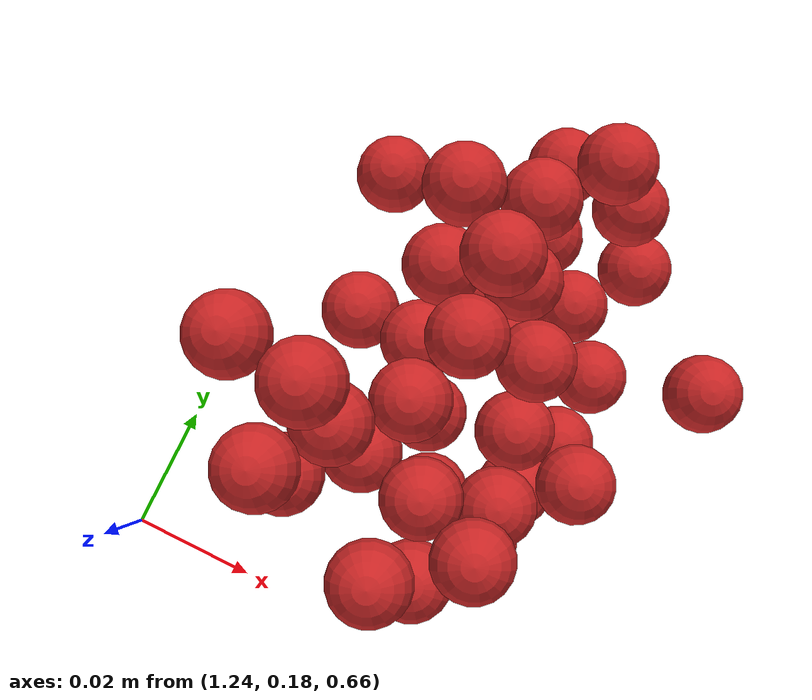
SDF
<sdf version="1.4">
 <world name="default">
  <model name="ground_plane">
   <static>1</static>
   <link name="link">
    <collision name="collision">
     <geometry><plane><normal>0 0 1</normal><size>100 100</size></plane></geometry>
     <surface><friction><ode><mu>100</mu><mu2>50</mu2></ode></friction></surface>
    </collision>
    <visual name="visual">
     <cast_shadows>0</cast_shadows>
     <geometry><plane><normal>0 0 1</normal><size>100 100</size></plane></geometry>
     <material>
      <script><uri>file://media/materials/scripts/gazebo.material</uri><name>Gazebo/Grey</name></script>
     </material>
    </visual>
    <velocity_decay><linear>0</linear><angular>0</angular></velocity_decay>
   </link>
  </model>
  <model name="sphere0">
   <pose>-0.008449 -0.022596 -0.039328 0.014462 -0.011872 0.001814</pose>
   <link name="link">
    <pose>1.27614 0.232149 0.722288 0 -0 0</pose>
    <inertial>
     <mass>0.001</mass>
     <inertia><ixx>0.004</ixx><ixy>0</ixy><ixz>0</ixz><iyy>0.004</iyy><iyz>0</iyz><izz>0.004</izz></inertia>
    </inertial>
    <collision name="collision">
     <surface>
      <contact><ode><kp>1e+10</kp><kd>1</kd></ode></contact>
      <friction><ode><mu>0.01</mu><mu2>0.01</mu2></ode></friction>
     </surface>
     <geometry><sphere><radius>0.006</radius></sphere></geometry>
    </collision>
    <visual name="visual">
     <geometry><sphere><radius>0.006</radius></sphere></geometry>
     <material>
      <script><uri>file://media/materials/scripts/gazebo.material</uri><name>Gazebo/Red</name></script>
     </material>
    </visual>
    <velocity_decay><linear>0</linear><angular>0</angular></velocity_decay>
   </link>
   <static>0</static>
  </model>
  <model name="sphere4">
   <pose>-0.014802 -0.025122 -0.033295 -0.000353 -0.001627 -0.000772</pose>
   <link name="link">
    <pose>1.28814 0.244149 0.722288 0 -0 0</pose>
    <inertial>
     <mass>0.001</mass>
     <inertia><ixx>0.004</ixx><ixy>0</ixy><ixz>0</ixz><iyy>0.004</iyy><iyz>0</iyz><izz>0.004</izz></inertia>
    </inertial>
    <collision name="collision">
     <surface>
      <contact><ode><kp>1e+10</kp><kd>1</kd></ode></contact>
      <friction><ode><mu>0.01</mu><mu2>0.01</mu2></ode></friction>
     </surface>
     <geometry><sphere><radius>0.006</radius></sphere></geometry>
    </collision>
    <visual name="visual">
     <geometry><sphere><radius>0.006</radius></sphere></geometry>
     <material>
      <script><uri>file://media/materials/scripts/gazebo.material</uri><name>Gazebo/Red</name></script>
     </material>
    </visual>
    <velocity_decay><linear>0</linear><angular>0</angular></velocity_decay>
   </link>
   <static>0</static>
  </model>
  <model name="sphere9">
   <pose>-0.015296 -0.01818 -0.030059 0.000717 -0.001454 0.000546</pose>
   <link name="link">
    <pose>1.27614 0.232149 0.734288 0 -0 0</pose>
    <inertial>
     <mass>0.001</mass>
     <inertia><ixx>0.004</ixx><ixy>0</ixy><ixz>0</ixz><iyy>0.004</iyy><iyz>0</iyz><izz>0.004</izz></inertia>
    </inertial>
    <collision name="collision">
     <surface>
      <contact><ode><kp>1e+10</kp><kd>1</kd></ode></contact>
      <friction><ode><mu>0.01</mu><mu2>0.01</mu2></ode></friction>
     </surface>
     <geometry><sphere><radius>0.006</radius></sphere></geometry>
    </collision>
    <visual name="visual">
     <geometry><sphere><radius>0.006</radius></sphere></geometry>
     <material>
      <script><uri>file://media/materials/scripts/gazebo.material</uri><name>Gazebo/Red</name></script>
     </material>
    </visual>
    <velocity_decay><linear>0</linear><angular>0</angular></velocity_decay>
   </link>
   <static>0</static>
  </model>
  <model name="sphere12">
   <pose>-0.013517 -0.018649 -0.062397 -0.002256 -0.005057 0.000115</pose>
   <link name="link">
    <pose>1.27614 0.244149 0.734288 0 -0 0</pose>
    <inertial>
     <mass>0.001</mass>
     <inertia><ixx>0.004</ixx><ixy>0</ixy><ixz>0</ixz><iyy>0.004</iyy><iyz>0</iyz><izz>0.004</izz></inertia>
    </inertial>
    <collision name="collision">
     <surface>
      <contact><ode><kp>1e+10</kp><kd>1</kd></ode></contact>
      <friction><ode><mu>0.01</mu><mu2>0.01</mu2></ode></friction>
     </surface>
     <geometry><sphere><radius>0.006</radius></sphere></geometry>
    </collision>
    <visual name="visual">
     <geometry><sphere><radius>0.006</radius></sphere></geometry>
     <material>
      <script><uri>file://media/materials/scripts/gazebo.material</uri><name>Gazebo/Red</name></script>
     </material>
    </visual>
    <velocity_decay><linear>0</linear><angular>0</angular></velocity_decay>
   </link>
   <static>0</static>
  </model>
  <model name="sphere13">
   <pose>-0.0034 -0.008162 -0.074705 0.000972 -0.005916 1.1e-05</pose>
   <link name="link">
    <pose>1.28814 0.244149 0.734288 0 -0 0</pose>
    <inertial>
     <mass>0.001</mass>
     <inertia><ixx>0.004</ixx><ixy>0</ixy><ixz>0</ixz><iyy>0.004</iyy><iyz>0</iyz><izz>0.004</izz></inertia>
    </inertial>
    <collision name="collision">
     <surface>
      <contact><ode><kp>1e+10</kp><kd>1</kd></ode></contact>
      <friction><ode><mu>0.01</mu><mu2>0.01</mu2></ode></friction>
     </surface>
     <geometry><sphere><radius>0.006</radius></sphere></geometry>
    </collision>
    <visual name="visual">
     <geometry><sphere><radius>0.006</radius></sphere></geometry>
     <material>
      <script><uri>file://media/materials/scripts/gazebo.material</uri><name>Gazebo/Red</name></script>
     </material>
    </visual>
    <velocity_decay><linear>0</linear><angular>0</angular></velocity_decay>
   </link>
   <static>0</static>
  </model>
  <model name="sphere15">
   <pose>-0.003786 -0.027529 -0.077509 0.020082 -0.032112 0.001138</pose>
   <link name="link">
    <pose>1.27614 0.256149 0.734288 0 -0 0</pose>
    <inertial>
     <mass>0.001</mass>
     <inertia><ixx>0.004</ixx><ixy>0</ixy><ixz>0</ixz><iyy>0.004</iyy><iyz>0</iyz><izz>0.004</izz></inertia>
    </inertial>
    <collision name="collision">
     <surface>
      <contact><ode><kp>1e+10</kp><kd>1</kd></ode></contact>
      <friction><ode><mu>0.01</mu><mu2>0.01</mu2></ode></friction>
     </surface>
     <geometry><sphere><radius>0.006</radius></sphere></geometry>
    </collision>
    <visual name="visual">
     <geometry><sphere><radius>0.006</radius></sphere></geometry>
     <material>
      <script><uri>file://media/materials/scripts/gazebo.material</uri><name>Gazebo/Red</name></script>
     </material>
    </visual>
    <velocity_decay><linear>0</linear><angular>0</angular></velocity_decay>
   </link>
   <static>0</static>
  </model>
  <model name="sphere19">
   <pose>-0.009811 -0.037376 -0.047543 -0.001053 -0.000103 -0.000936</pose>
   <link name="link">
    <pose>1.28814 0.232149 0.746288 0 -0 0</pose>
    <inertial>
     <mass>0.001</mass>
     <inertia><ixx>0.004</ixx><ixy>0</ixy><ixz>0</ixz><iyy>0.004</iyy><iyz>0</iyz><izz>0.004</izz></inertia>
    </inertial>
    <collision name="collision">
     <surface>
      <contact><ode><kp>1e+10</kp><kd>1</kd></ode></contact>
      <friction><ode><mu>0.01</mu><mu2>0.01</mu2></ode></friction>
     </surface>
     <geometry><sphere><radius>0.006</radius></sphere></geometry>
    </collision>
    <visual name="visual">
     <geometry><sphere><radius>0.006</radius></sphere></geometry>
     <material>
      <script><uri>file://media/materials/scripts/gazebo.material</uri><name>Gazebo/Red</name></script>
     </material>
    </visual>
    <velocity_decay><linear>0</linear><angular>0</angular></velocity_decay>
   </link>
   <static>0</static>
  </model>
  <model name="sphere27">
   <pose>-0.015477 -0.031403 -0.068217 0.000595 0.000457 0.000546</pose>
   <link name="link">
    <pose>1.27614 0.232149 0.758288 0 -0 0</pose>
    <inertial>
     <mass>0.001</mass>
     <inertia><ixx>0.004</ixx><ixy>0</ixy><ixz>0</ixz><iyy>0.004</iyy><iyz>0</iyz><izz>0.004</izz></inertia>
    </inertial>
    <collision name="collision">
     <surface>
      <contact><ode><kp>1e+10</kp><kd>1</kd></ode></contact>
      <friction><ode><mu>0.01</mu><mu2>0.01</mu2></ode></friction>
     </surface>
     <geometry><sphere><radius>0.006</radius></sphere></geometry>
    </collision>
    <visual name="visual">
     <geometry><sphere><radius>0.006</radius></sphere></geometry>
     <material>
      <script><uri>file://media/materials/scripts/gazebo.material</uri><name>Gazebo/Red</name></script>
     </material>
    </visual>
    <velocity_decay><linear>0</linear><angular>0</angular></velocity_decay>
   </link>
   <static>0</static>
  </model>
  <model name="sphere28">
   <pose>-0.003416 -0.037625 -0.071615 -0.000766 -0.001145 0.00032</pose>
   <link name="link">
    <pose>1.28814 0.232149 0.758288 0 -0 0</pose>
    <inertial>
     <mass>0.001</mass>
     <inertia><ixx>0.004</ixx><ixy>0</ixy><ixz>0</ixz><iyy>0.004</iyy><iyz>0</iyz><izz>0.004</izz></inertia>
    </inertial>
    <collision name="collision">
     <surface>
      <contact><ode><kp>1e+10</kp><kd>1</kd></ode></contact>
      <friction><ode><mu>0.01</mu><mu2>0.01</mu2></ode></friction>
     </surface>
     <geometry><sphere><radius>0.006</radius></sphere></geometry>
    </collision>
    <visual name="visual">
     <geometry><sphere><radius>0.006</radius></sphere></geometry>
     <material>
      <script><uri>file://media/materials/scripts/gazebo.material</uri><name>Gazebo/Red</name></script>
     </material>
    </visual>
    <velocity_decay><linear>0</linear><angular>0</angular></velocity_decay>
   </link>
   <static>0</static>
  </model>
  <model name="sphere30">
   <pose>-0.009021 -0.004718 -0.069597 0.000796 0.000534 -0.000799</pose>
   <link name="link">
    <pose>1.27614 0.244149 0.758288 0 -0 0</pose>
    <inertial>
     <mass>0.001</mass>
     <inertia><ixx>0.004</ixx><ixy>0</ixy><ixz>0</ixz><iyy>0.004</iyy><iyz>0</iyz><izz>0.004</izz></inertia>
    </inertial>
    <collision name="collision">
     <surface>
      <contact><ode><kp>1e+10</kp><kd>1</kd></ode></contact>
      <friction><ode><mu>0.01</mu><mu2>0.01</mu2></ode></friction>
     </surface>
     <geometry><sphere><radius>0.006</radius></sphere></geometry>
    </collision>
    <visual name="visual">
     <geometry><sphere><radius>0.006</radius></sphere></geometry>
     <material>
      <script><uri>file://media/materials/scripts/gazebo.material</uri><name>Gazebo/Red</name></script>
     </material>
    </visual>
    <velocity_decay><linear>0</linear><angular>0</angular></velocity_decay>
   </link>
   <static>0</static>
  </model>
  <model name="sphere41">
   <pose>-0.008737 -0.033744 -0.087392 -0.000104 -0.001694 -0.000369</pose>
   <link name="link">
    <pose>1.30014 0.244149 0.770288 0 -0 0</pose>
    <inertial>
     <mass>0.001</mass>
     <inertia><ixx>0.004</ixx><ixy>0</ixy><ixz>0</ixz><iyy>0.004</iyy><iyz>0</iyz><izz>0.004</izz></inertia>
    </inertial>
    <collision name="collision">
     <surface>
      <contact><ode><kp>1e+10</kp><kd>1</kd></ode></contact>
      <friction><ode><mu>0.01</mu><mu2>0.01</mu2></ode></friction>
     </surface>
     <geometry><sphere><radius>0.006</radius></sphere></geometry>
    </collision>
    <visual name="visual">
     <geometry><sphere><radius>0.006</radius></sphere></geometry>
     <material>
      <script><uri>file://media/materials/scripts/gazebo.material</uri><name>Gazebo/Red</name></script>
     </material>
    </visual>
    <velocity_decay><linear>0</linear><angular>0</angular></velocity_decay>
   </link>
   <static>0</static>
  </model>
  <model name="sphere42">
   <pose>-0.013365 -0.011616 -0.107501 0.000366 -0.010215 0.003573</pose>
   <link name="link">
    <pose>1.27614 0.256149 0.770288 0 -0 0</pose>
    <inertial>
     <mass>0.001</mass>
     <inertia><ixx>0.004</ixx><ixy>0</ixy><ixz>0</ixz><iyy>0.004</iyy><iyz>0</iyz><izz>0.004</izz></inertia>
    </inertial>
    <collision name="collision">
     <surface>
      <contact><ode><kp>1e+10</kp><kd>1</kd></ode></contact>
      <friction><ode><mu>0.01</mu><mu2>0.01</mu2></ode></friction>
     </surface>
     <geometry><sphere><radius>0.006</radius></sphere></geometry>
    </collision>
    <visual name="visual">
     <geometry><sphere><radius>0.006</radius></sphere></geometry>
     <material>
      <script><uri>file://media/materials/scripts/gazebo.material</uri><name>Gazebo/Red</name></script>
     </material>
    </visual>
    <velocity_decay><linear>0</linear><angular>0</angular></velocity_decay>
   </link>
   <static>0</static>
  </model>
  <model name="sphere44">
   <pose>-0.001943 -0.038412 -0.085796 -0.000606 0.001642 -8.2e-05</pose>
   <link name="link">
    <pose>1.30014 0.256149 0.770288 0 -0 0</pose>
    <inertial>
     <mass>0.001</mass>
     <inertia><ixx>0.004</ixx><ixy>0</ixy><ixz>0</ixz><iyy>0.004</iyy><iyz>0</iyz><izz>0.004</izz></inertia>
    </inertial>
    <collision name="collision">
     <surface>
      <contact><ode><kp>1e+10</kp><kd>1</kd></ode></contact>
      <friction><ode><mu>0.01</mu><mu2>0.01</mu2></ode></friction>
     </surface>
     <geometry><sphere><radius>0.006</radius></sphere></geometry>
    </collision>
    <visual name="visual">
     <geometry><sphere><radius>0.006</radius></sphere></geometry>
     <material>
      <script><uri>file://media/materials/scripts/gazebo.material</uri><name>Gazebo/Red</name></script>
     </material>
    </visual>
    <velocity_decay><linear>0</linear><angular>0</angular></velocity_decay>
   </link>
   <static>0</static>
  </model>
  <model name="sphere45">
   <pose>-0.00944 -0.020288 -0.090923 0.00424 -0.002645 0.001706</pose>
   <link name="link">
    <pose>1.27614 0.232149 0.782288 0 -0 0</pose>
    <inertial>
     <mass>0.001</mass>
     <inertia><ixx>0.004</ixx><ixy>0</ixy><ixz>0</ixz><iyy>0.004</iyy><iyz>0</iyz><izz>0.004</izz></inertia>
    </inertial>
    <collision name="collision">
     <surface>
      <contact><ode><kp>1e+10</kp><kd>1</kd></ode></contact>
      <friction><ode><mu>0.01</mu><mu2>0.01</mu2></ode></friction>
     </surface>
     <geometry><sphere><radius>0.006</radius></sphere></geometry>
    </collision>
    <visual name="visual">
     <geometry><sphere><radius>0.006</radius></sphere></geometry>
     <material>
      <script><uri>file://media/materials/scripts/gazebo.material</uri><name>Gazebo/Red</name></script>
     </material>
    </visual>
    <velocity_decay><linear>0</linear><angular>0</angular></velocity_decay>
   </link>
   <static>0</static>
  </model>
  <model name="sphere46">
   <pose>-0.002477 0.000703 -0.095107 0.00121 2.9e-05 -0.000409</pose>
   <link name="link">
    <pose>1.28814 0.232149 0.782288 0 -0 0</pose>
    <inertial>
     <mass>0.001</mass>
     <inertia><ixx>0.004</ixx><ixy>0</ixy><ixz>0</ixz><iyy>0.004</iyy><iyz>0</iyz><izz>0.004</izz></inertia>
    </inertial>
    <collision name="collision">
     <surface>
      <contact><ode><kp>1e+10</kp><kd>1</kd></ode></contact>
      <friction><ode><mu>0.01</mu><mu2>0.01</mu2></ode></friction>
     </surface>
     <geometry><sphere><radius>0.006</radius></sphere></geometry>
    </collision>
    <visual name="visual">
     <geometry><sphere><radius>0.006</radius></sphere></geometry>
     <material>
      <script><uri>file://media/materials/scripts/gazebo.material</uri><name>Gazebo/Red</name></script>
     </material>
    </visual>
    <velocity_decay><linear>0</linear><angular>0</angular></velocity_decay>
   </link>
   <static>0</static>
  </model>
  <model name="sphere50">
   <pose>-0.010142 -0.031368 -0.104311 -0.000566 0.003134 5.5e-05</pose>
   <link name="link">
    <pose>1.30014 0.244149 0.782288 0 -0 0</pose>
    <inertial>
     <mass>0.001</mass>
     <inertia><ixx>0.004</ixx><ixy>0</ixy><ixz>0</ixz><iyy>0.004</iyy><iyz>0</iyz><izz>0.004</izz></inertia>
    </inertial>
    <collision name="collision">
     <surface>
      <contact><ode><kp>1e+10</kp><kd>1</kd></ode></contact>
      <friction><ode><mu>0.01</mu><mu2>0.01</mu2></ode></friction>
     </surface>
     <geometry><sphere><radius>0.006</radius></sphere></geometry>
    </collision>
    <visual name="visual">
     <geometry><sphere><radius>0.006</radius></sphere></geometry>
     <material>
      <script><uri>file://media/materials/scripts/gazebo.material</uri><name>Gazebo/Red</name></script>
     </material>
    </visual>
    <velocity_decay><linear>0</linear><angular>0</angular></velocity_decay>
   </link>
   <static>0</static>
  </model>
  <model name="sphere52">
   <pose>0.000318 0.042317 -0.117573 0.05871 0.008475 0.001384</pose>
   <link name="link">
    <pose>1.28814 0.256149 0.782288 0 -0 0</pose>
    <inertial>
     <mass>0.001</mass>
     <inertia><ixx>0.004</ixx><ixy>0</ixy><ixz>0</ixz><iyy>0.004</iyy><iyz>0</iyz><izz>0.004</izz></inertia>
    </inertial>
    <collision name="collision">
     <surface>
      <contact><ode><kp>1e+10</kp><kd>1</kd></ode></contact>
      <friction><ode><mu>0.01</mu><mu2>0.01</mu2></ode></friction>
     </surface>
     <geometry><sphere><radius>0.006</radius></sphere></geometry>
    </collision>
    <visual name="visual">
     <geometry><sphere><radius>0.006</radius></sphere></geometry>
     <material>
      <script><uri>file://media/materials/scripts/gazebo.material</uri><name>Gazebo/Red</name></script>
     </material>
    </visual>
    <velocity_decay><linear>0</linear><angular>0</angular></velocity_decay>
   </link>
   <static>0</static>
  </model>
  <model name="sphere53">
   <pose>-0.011426 -0.052203 -0.10966 0.000285 0.004013 -0.000385</pose>
   <link name="link">
    <pose>1.30014 0.256149 0.782288 0 -0 0</pose>
    <inertial>
     <mass>0.001</mass>
     <inertia><ixx>0.004</ixx><ixy>0</ixy><ixz>0</ixz><iyy>0.004</iyy><iyz>0</iyz><izz>0.004</izz></inertia>
    </inertial>
    <collision name="collision">
     <surface>
      <contact><ode><kp>1e+10</kp><kd>1</kd></ode></contact>
      <friction><ode><mu>0.01</mu><mu2>0.01</mu2></ode></friction>
     </surface>
     <geometry><sphere><radius>0.006</radius></sphere></geometry>
    </collision>
    <visual name="visual">
     <geometry><sphere><radius>0.006</radius></sphere></geometry>
     <material>
      <script><uri>file://media/materials/scripts/gazebo.material</uri><name>Gazebo/Red</name></script>
     </material>
    </visual>
    <velocity_decay><linear>0</linear><angular>0</angular></velocity_decay>
   </link>
   <static>0</static>
  </model>
  <model name="sphere56">
   <pose>-0.015746 -0.020339 -0.123708 0.003451 -0.005197 -0.001468</pose>
   <link name="link">
    <pose>1.30014 0.232149 0.794288 0 -0 0</pose>
    <inertial>
     <mass>0.001</mass>
     <inertia><ixx>0.004</ixx><ixy>0</ixy><ixz>0</ixz><iyy>0.004</iyy><iyz>0</iyz><izz>0.004</izz></inertia>
    </inertial>
    <collision name="collision">
     <surface>
      <contact><ode><kp>1e+10</kp><kd>1</kd></ode></contact>
      <friction><ode><mu>0.01</mu><mu2>0.01</mu2></ode></friction>
     </surface>
     <geometry><sphere><radius>0.006</radius></sphere></geometry>
    </collision>
    <visual name="visual">
     <geometry><sphere><radius>0.006</radius></sphere></geometry>
     <material>
      <script><uri>file://media/materials/scripts/gazebo.material</uri><name>Gazebo/Red</name></script>
     </material>
    </visual>
    <velocity_decay><linear>0</linear><angular>0</angular></velocity_decay>
   </link>
   <static>0</static>
  </model>
  <model name="sphere58">
   <pose>7.7e-05 -0.025013 -0.112581 -0.000903 -3.9e-05 0.001082</pose>
   <link name="link">
    <pose>1.28814 0.244149 0.794288 0 -0 0</pose>
    <inertial>
     <mass>0.001</mass>
     <inertia><ixx>0.004</ixx><ixy>0</ixy><ixz>0</ixz><iyy>0.004</iyy><iyz>0</iyz><izz>0.004</izz></inertia>
    </inertial>
    <collision name="collision">
     <surface>
      <contact><ode><kp>1e+10</kp><kd>1</kd></ode></contact>
      <friction><ode><mu>0.01</mu><mu2>0.01</mu2></ode></friction>
     </surface>
     <geometry><sphere><radius>0.006</radius></sphere></geometry>
    </collision>
    <visual name="visual">
     <geometry><sphere><radius>0.006</radius></sphere></geometry>
     <material>
      <script><uri>file://media/materials/scripts/gazebo.material</uri><name>Gazebo/Red</name></script>
     </material>
    </visual>
    <velocity_decay><linear>0</linear><angular>0</angular></velocity_decay>
   </link>
   <static>0</static>
  </model>
  <model name="sphere61">
   <pose>-0.010824 -0.000942 -0.116002 -0.009472 -0.000279 -0.000742</pose>
   <link name="link">
    <pose>1.28814 0.256149 0.794288 0 -0 0</pose>
    <inertial>
     <mass>0.001</mass>
     <inertia><ixx>0.004</ixx><ixy>0</ixy><ixz>0</ixz><iyy>0.004</iyy><iyz>0</iyz><izz>0.004</izz></inertia>
    </inertial>
    <collision name="collision">
     <surface>
      <contact><ode><kp>1e+10</kp><kd>1</kd></ode></contact>
      <friction><ode><mu>0.01</mu><mu2>0.01</mu2></ode></friction>
     </surface>
     <geometry><sphere><radius>0.006</radius></sphere></geometry>
    </collision>
    <visual name="visual">
     <geometry><sphere><radius>0.006</radius></sphere></geometry>
     <material>
      <script><uri>file://media/materials/scripts/gazebo.material</uri><name>Gazebo/Red</name></script>
     </material>
    </visual>
    <velocity_decay><linear>0</linear><angular>0</angular></velocity_decay>
   </link>
   <static>0</static>
  </model>
  <model name="sphere62">
   <pose>-0.007142 -0.034332 -0.12159 -0.001264 0.003793 2.4e-05</pose>
   <link name="link">
    <pose>1.30014 0.256149 0.794288 0 -0 0</pose>
    <inertial>
     <mass>0.001</mass>
     <inertia><ixx>0.004</ixx><ixy>0</ixy><ixz>0</ixz><iyy>0.004</iyy><iyz>0</iyz><izz>0.004</izz></inertia>
    </inertial>
    <collision name="collision">
     <surface>
      <contact><ode><kp>1e+10</kp><kd>1</kd></ode></contact>
      <friction><ode><mu>0.01</mu><mu2>0.01</mu2></ode></friction>
     </surface>
     <geometry><sphere><radius>0.006</radius></sphere></geometry>
    </collision>
    <visual name="visual">
     <geometry><sphere><radius>0.006</radius></sphere></geometry>
     <material>
      <script><uri>file://media/materials/scripts/gazebo.material</uri><name>Gazebo/Red</name></script>
     </material>
    </visual>
    <velocity_decay><linear>0</linear><angular>0</angular></velocity_decay>
   </link>
   <static>0</static>
  </model>
  <model name="sphere63">
   <pose>-0.00079 0.008315 -0.109665 -0.000249 -0.000446 0.000642</pose>
   <link name="link">
    <pose>1.27614 0.232149 0.806288 0 -0 0</pose>
    <inertial>
     <mass>0.001</mass>
     <inertia><ixx>0.004</ixx><ixy>0</ixy><ixz>0</ixz><iyy>0.004</iyy><iyz>0</iyz><izz>0.004</izz></inertia>
    </inertial>
    <collision name="collision">
     <surface>
      <contact><ode><kp>1e+10</kp><kd>1</kd></ode></contact>
      <friction><ode><mu>0.01</mu><mu2>0.01</mu2></ode></friction>
     </surface>
     <geometry><sphere><radius>0.006</radius></sphere></geometry>
    </collision>
    <visual name="visual">
     <geometry><sphere><radius>0.006</radius></sphere></geometry>
     <material>
      <script><uri>file://media/materials/scripts/gazebo.material</uri><name>Gazebo/Red</name></script>
     </material>
    </visual>
    <velocity_decay><linear>0</linear><angular>0</angular></velocity_decay>
   </link>
   <static>0</static>
  </model>
  <model name="sphere65">
   <pose>-0.011154 -0.031361 -0.10904 -0.00139 0.001015 0.000582</pose>
   <link name="link">
    <pose>1.30014 0.232149 0.806288 0 -0 0</pose>
    <inertial>
     <mass>0.001</mass>
     <inertia><ixx>0.004</ixx><ixy>0</ixy><ixz>0</ixz><iyy>0.004</iyy><iyz>0</iyz><izz>0.004</izz></inertia>
    </inertial>
    <collision name="collision">
     <surface>
      <contact><ode><kp>1e+10</kp><kd>1</kd></ode></contact>
      <friction><ode><mu>0.01</mu><mu2>0.01</mu2></ode></friction>
     </surface>
     <geometry><sphere><radius>0.006</radius></sphere></geometry>
    </collision>
    <visual name="visual">
     <geometry><sphere><radius>0.006</radius></sphere></geometry>
     <material>
      <script><uri>file://media/materials/scripts/gazebo.material</uri><name>Gazebo/Red</name></script>
     </material>
    </visual>
    <velocity_decay><linear>0</linear><angular>0</angular></velocity_decay>
   </link>
   <static>0</static>
  </model>
  <model name="sphere66">
   <pose>-0.004411 -0.02068 -0.125648 -0.003405 -0.002733 0.000608</pose>
   <link name="link">
    <pose>1.27614 0.244149 0.806288 0 -0 0</pose>
    <inertial>
     <mass>0.001</mass>
     <inertia><ixx>0.004</ixx><ixy>0</ixy><ixz>0</ixz><iyy>0.004</iyy><iyz>0</iyz><izz>0.004</izz></inertia>
    </inertial>
    <collision name="collision">
     <surface>
      <contact><ode><kp>1e+10</kp><kd>1</kd></ode></contact>
      <friction><ode><mu>0.01</mu><mu2>0.01</mu2></ode></friction>
     </surface>
     <geometry><sphere><radius>0.006</radius></sphere></geometry>
    </collision>
    <visual name="visual">
     <geometry><sphere><radius>0.006</radius></sphere></geometry>
     <material>
      <script><uri>file://media/materials/scripts/gazebo.material</uri><name>Gazebo/Red</name></script>
     </material>
    </visual>
    <velocity_decay><linear>0</linear><angular>0</angular></velocity_decay>
   </link>
   <static>0</static>
  </model>
  <model name="sphere71">
   <pose>-0.000779 -0.002246 -0.149921 0.022798 -0.004161 -0.000468</pose>
   <link name="link">
    <pose>1.30014 0.256149 0.806288 0 -0 0</pose>
    <inertial>
     <mass>0.001</mass>
     <inertia><ixx>0.004</ixx><ixy>0</ixy><ixz>0</ixz><iyy>0.004</iyy><iyz>0</iyz><izz>0.004</izz></inertia>
    </inertial>
    <collision name="collision">
     <surface>
      <contact><ode><kp>1e+10</kp><kd>1</kd></ode></contact>
      <friction><ode><mu>0.01</mu><mu2>0.01</mu2></ode></friction>
     </surface>
     <geometry><sphere><radius>0.006</radius></sphere></geometry>
    </collision>
    <visual name="visual">
     <geometry><sphere><radius>0.006</radius></sphere></geometry>
     <material>
      <script><uri>file://media/materials/scripts/gazebo.material</uri><name>Gazebo/Red</name></script>
     </material>
    </visual>
    <velocity_decay><linear>0</linear><angular>0</angular></velocity_decay>
   </link>
   <static>0</static>
  </model>
  <model name="sphere72">
   <pose>-0.000555 -0.002887 -0.1251 -0.00043 -0.000155 3.2e-05</pose>
   <link name="link">
    <pose>1.27614 0.232149 0.818288 0 -0 0</pose>
    <inertial>
     <mass>0.001</mass>
     <inertia><ixx>0.004</ixx><ixy>0</ixy><ixz>0</ixz><iyy>0.004</iyy><iyz>0</iyz><izz>0.004</izz></inertia>
    </inertial>
    <collision name="collision">
     <surface>
      <contact><ode><kp>1e+10</kp><kd>1</kd></ode></contact>
      <friction><ode><mu>0.01</mu><mu2>0.01</mu2></ode></friction>
     </surface>
     <geometry><sphere><radius>0.006</radius></sphere></geometry>
    </collision>
    <visual name="visual">
     <geometry><sphere><radius>0.006</radius></sphere></geometry>
     <material>
      <script><uri>file://media/materials/scripts/gazebo.material</uri><name>Gazebo/Red</name></script>
     </material>
    </visual>
    <velocity_decay><linear>0</linear><angular>0</angular></velocity_decay>
   </link>
   <static>0</static>
  </model>
  <model name="sphere79">
   <pose>-0.010495 -0.044543 -0.106848 -0.058814 0.014931 0.000937</pose>
   <link name="link">
    <pose>1.28814 0.256149 0.818288 0 -0 0</pose>
    <inertial>
     <mass>0.001</mass>
     <inertia><ixx>0.004</ixx><ixy>0</ixy><ixz>0</ixz><iyy>0.004</iyy><iyz>0</iyz><izz>0.004</izz></inertia>
    </inertial>
    <collision name="collision">
     <surface>
      <contact><ode><kp>1e+10</kp><kd>1</kd></ode></contact>
      <friction><ode><mu>0.01</mu><mu2>0.01</mu2></ode></friction>
     </surface>
     <geometry><sphere><radius>0.006</radius></sphere></geometry>
    </collision>
    <visual name="visual">
     <geometry><sphere><radius>0.006</radius></sphere></geometry>
     <material>
      <script><uri>file://media/materials/scripts/gazebo.material</uri><name>Gazebo/Red</name></script>
     </material>
    </visual>
    <velocity_decay><linear>0</linear><angular>0</angular></velocity_decay>
   </link>
   <static>0</static>
  </model>
  <model name="sphere82">
   <pose>-0.012427 -0.011909 -0.153753 0.001937 -0.000876 -0.000605</pose>
   <link name="link">
    <pose>1.28814 0.232149 0.830288 0 -0 0</pose>
    <inertial>
     <mass>0.001</mass>
     <inertia><ixx>0.004</ixx><ixy>0</ixy><ixz>0</ixz><iyy>0.004</iyy><iyz>0</iyz><izz>0.004</izz></inertia>
    </inertial>
    <collision name="collision">
     <surface>
      <contact><ode><kp>1e+10</kp><kd>1</kd></ode></contact>
      <friction><ode><mu>0.01</mu><mu2>0.01</mu2></ode></friction>
     </surface>
     <geometry><sphere><radius>0.006</radius></sphere></geometry>
    </collision>
    <visual name="visual">
     <geometry><sphere><radius>0.006</radius></sphere></geometry>
     <material>
      <script><uri>file://media/materials/scripts/gazebo.material</uri><name>Gazebo/Red</name></script>
     </material>
    </visual>
    <velocity_decay><linear>0</linear><angular>0</angular></velocity_decay>
   </link>
   <static>0</static>
  </model>
  <model name="sphere85">
   <pose>-0.008054 -0.004028 -0.145752 -0.000796 -0.001208 0.0003</pose>
   <link name="link">
    <pose>1.28814 0.244149 0.830288 0 -0 0</pose>
    <inertial>
     <mass>0.001</mass>
     <inertia><ixx>0.004</ixx><ixy>0</ixy><ixz>0</ixz><iyy>0.004</iyy><iyz>0</iyz><izz>0.004</izz></inertia>
    </inertial>
    <collision name="collision">
     <surface>
      <contact><ode><kp>1e+10</kp><kd>1</kd></ode></contact>
      <friction><ode><mu>0.01</mu><mu2>0.01</mu2></ode></friction>
     </surface>
     <geometry><sphere><radius>0.006</radius></sphere></geometry>
    </collision>
    <visual name="visual">
     <geometry><sphere><radius>0.006</radius></sphere></geometry>
     <material>
      <script><uri>file://media/materials/scripts/gazebo.material</uri><name>Gazebo/Red</name></script>
     </material>
    </visual>
    <velocity_decay><linear>0</linear><angular>0</angular></velocity_decay>
   </link>
   <static>0</static>
  </model>
  <model name="sphere90">
   <pose>-0.006998 -0.018423 -0.158622 0.002454 -0.000659 -0.002528</pose>
   <link name="link">
    <pose>1.27614 0.232149 0.842288 0 -0 0</pose>
    <inertial>
     <mass>0.001</mass>
     <inertia><ixx>0.004</ixx><ixy>0</ixy><ixz>0</ixz><iyy>0.004</iyy><iyz>0</iyz><izz>0.004</izz></inertia>
    </inertial>
    <collision name="collision">
     <surface>
      <contact><ode><kp>1e+10</kp><kd>1</kd></ode></contact>
      <friction><ode><mu>0.01</mu><mu2>0.01</mu2></ode></friction>
     </surface>
     <geometry><sphere><radius>0.006</radius></sphere></geometry>
    </collision>
    <visual name="visual">
     <geometry><sphere><radius>0.006</radius></sphere></geometry>
     <material>
      <script><uri>file://media/materials/scripts/gazebo.material</uri><name>Gazebo/Red</name></script>
     </material>
    </visual>
    <velocity_decay><linear>0</linear><angular>0</angular></velocity_decay>
   </link>
   <static>0</static>
  </model>
  <model name="sphere97">
   <pose>-0.00705 0.00841 -0.152431 0.00513 0.003879 0.00188</pose>
   <link name="link">
    <pose>1.28814 0.256149 0.842288 0 -0 0</pose>
    <inertial>
     <mass>0.001</mass>
     <inertia><ixx>0.004</ixx><ixy>0</ixy><ixz>0</ixz><iyy>0.004</iyy><iyz>0</iyz><izz>0.004</izz></inertia>
    </inertial>
    <collision name="collision">
     <surface>
      <contact><ode><kp>1e+10</kp><kd>1</kd></ode></contact>
      <friction><ode><mu>0.01</mu><mu2>0.01</mu2></ode></friction>
     </surface>
     <geometry><sphere><radius>0.006</radius></sphere></geometry>
    </collision>
    <visual name="visual">
     <geometry><sphere><radius>0.006</radius></sphere></geometry>
     <material>
      <script><uri>file://media/materials/scripts/gazebo.material</uri><name>Gazebo/Red</name></script>
     </material>
    </visual>
    <velocity_decay><linear>0</linear><angular>0</angular></velocity_decay>
   </link>
   <static>0</static>
  </model>
  <model name="sphere98">
   <pose>-0.011811 -0.008677 -0.17594 0.004236 -4.8e-05 -2.2e-05</pose>
   <link name="link">
    <pose>1.30014 0.256149 0.842288 0 -0 0</pose>
    <inertial>
     <mass>0.001</mass>
     <inertia><ixx>0.004</ixx><ixy>0</ixy><ixz>0</ixz><iyy>0.004</iyy><iyz>0</iyz><izz>0.004</izz></inertia>
    </inertial>
    <collision name="collision">
     <surface>
      <contact><ode><kp>1e+10</kp><kd>1</kd></ode></contact>
      <friction><ode><mu>0.01</mu><mu2>0.01</mu2></ode></friction>
     </surface>
     <geometry><sphere><radius>0.006</radius></sphere></geometry>
    </collision>
    <visual name="visual">
     <geometry><sphere><radius>0.006</radius></sphere></geometry>
     <material>
      <script><uri>file://media/materials/scripts/gazebo.material</uri><name>Gazebo/Red</name></script>
     </material>
    </visual>
    <velocity_decay><linear>0</linear><angular>0</angular></velocity_decay>
   </link>
   <static>0</static>
  </model>
  <model name="sphere100">
   <pose>-0.008493 -0.023604 -0.164519 0.001098 -2.3e-05 -0.000748</pose>
   <link name="link">
    <pose>1.28814 0.232149 0.854288 0 -0 0</pose>
    <inertial>
     <mass>0.001</mass>
     <inertia><ixx>0.004</ixx><ixy>0</ixy><ixz>0</ixz><iyy>0.004</iyy><iyz>0</iyz><izz>0.004</izz></inertia>
    </inertial>
    <collision name="collision">
     <surface>
      <contact><ode><kp>1e+10</kp><kd>1</kd></ode></contact>
      <friction><ode><mu>0.01</mu><mu2>0.01</mu2></ode></friction>
     </surface>
     <geometry><sphere><radius>0.006</radius></sphere></geometry>
    </collision>
    <visual name="visual">
     <geometry><sphere><radius>0.006</radius></sphere></geometry>
     <material>
      <script><uri>file://media/materials/scripts/gazebo.material</uri><name>Gazebo/Red</name></script>
     </material>
    </visual>
    <velocity_decay><linear>0</linear><angular>0</angular></velocity_decay>
   </link>
   <static>0</static>
  </model>
  <model name="sphere103">
   <pose>-0.010521 0.005192 -0.174132 -0.002303 0.001383 -0.001001</pose>
   <link name="link">
    <pose>1.28814 0.244149 0.854288 0 -0 0</pose>
    <inertial>
     <mass>0.001</mass>
     <inertia><ixx>0.004</ixx><ixy>0</ixy><ixz>0</ixz><iyy>0.004</iyy><iyz>0</iyz><izz>0.004</izz></inertia>
    </inertial>
    <collision name="collision">
     <surface>
      <contact><ode><kp>1e+10</kp><kd>1</kd></ode></contact>
      <friction><ode><mu>0.01</mu><mu2>0.01</mu2></ode></friction>
     </surface>
     <geometry><sphere><radius>0.006</radius></sphere></geometry>
    </collision>
    <visual name="visual">
     <geometry><sphere><radius>0.006</radius></sphere></geometry>
     <material>
      <script><uri>file://media/materials/scripts/gazebo.material</uri><name>Gazebo/Red</name></script>
     </material>
    </visual>
    <velocity_decay><linear>0</linear><angular>0</angular></velocity_decay>
   </link>
   <static>0</static>
  </model>
  <model name="sphere105">
   <pose>-0.012057 -0.011554 -0.157206 -0.004054 0.001956 0.000251</pose>
   <link name="link">
    <pose>1.27614 0.256149 0.854288 0 -0 0</pose>
    <inertial>
     <mass>0.001</mass>
     <inertia><ixx>0.004</ixx><ixy>0</ixy><ixz>0</ixz><iyy>0.004</iyy><iyz>0</iyz><izz>0.004</izz></inertia>
    </inertial>
    <collision name="collision">
     <surface>
      <contact><ode><kp>1e+10</kp><kd>1</kd></ode></contact>
      <friction><ode><mu>0.01</mu><mu2>0.01</mu2></ode></friction>
     </surface>
     <geometry><sphere><radius>0.006</radius></sphere></geometry>
    </collision>
    <visual name="visual">
     <geometry><sphere><radius>0.006</radius></sphere></geometry>
     <material>
      <script><uri>file://media/materials/scripts/gazebo.material</uri><name>Gazebo/Red</name></script>
     </material>
    </visual>
    <velocity_decay><linear>0</linear><angular>0</angular></velocity_decay>
   </link>
   <static>0</static>
  </model>
  <model name="sphere108">
   <pose>-0.001669 0.018568 -0.174082 -0.000775 0.002156 0.000706</pose>
   <link name="link">
    <pose>1.27614 0.232149 0.866288 0 -0 0</pose>
    <inertial>
     <mass>0.001</mass>
     <inertia><ixx>0.004</ixx><ixy>0</ixy><ixz>0</ixz><iyy>0.004</iyy><iyz>0</iyz><izz>0.004</izz></inertia>
    </inertial>
    <collision name="collision">
     <surface>
      <contact><ode><kp>1e+10</kp><kd>1</kd></ode></contact>
      <friction><ode><mu>0.01</mu><mu2>0.01</mu2></ode></friction>
     </surface>
     <geometry><sphere><radius>0.006</radius></sphere></geometry>
    </collision>
    <visual name="visual">
     <geometry><sphere><radius>0.006</radius></sphere></geometry>
     <material>
      <script><uri>file://media/materials/scripts/gazebo.material</uri><name>Gazebo/Red</name></script>
     </material>
    </visual>
    <velocity_decay><linear>0</linear><angular>0</angular></velocity_decay>
   </link>
   <static>0</static>
  </model>
  <model name="sphere111">
   <pose>-0.006465 -0.008285 -0.185583 -0.001752 0.002747 0.000379</pose>
   <link name="link">
    <pose>1.27614 0.244149 0.866288 0 -0 0</pose>
    <inertial>
     <mass>0.001</mass>
     <inertia><ixx>0.004</ixx><ixy>0</ixy><ixz>0</ixz><iyy>0.004</iyy><iyz>0</iyz><izz>0.004</izz></inertia>
    </inertial>
    <collision name="collision">
     <surface>
      <contact><ode><kp>1e+10</kp><kd>1</kd></ode></contact>
      <friction><ode><mu>0.01</mu><mu2>0.01</mu2></ode></friction>
     </surface>
     <geometry><sphere><radius>0.006</radius></sphere></geometry>
    </collision>
    <visual name="visual">
     <geometry><sphere><radius>0.006</radius></sphere></geometry>
     <material>
      <script><uri>file://media/materials/scripts/gazebo.material</uri><name>Gazebo/Red</name></script>
     </material>
    </visual>
    <velocity_decay><linear>0</linear><angular>0</angular></velocity_decay>
   </link>
   <static>0</static>
  </model>
  <model name="sphere116">
   <pose>-0.000914 -0.024326 -0.167633 -0.015359 0.012752 -0.004549</pose>
   <link name="link">
    <pose>1.30014 0.256149 0.866288 0 -0 0</pose>
    <inertial>
     <mass>0.001</mass>
     <inertia><ixx>0.004</ixx><ixy>0</ixy><ixz>0</ixz><iyy>0.004</iyy><iyz>0</iyz><izz>0.004</izz></inertia>
    </inertial>
    <collision name="collision">
     <surface>
      <contact><ode><kp>1e+10</kp><kd>1</kd></ode></contact>
      <friction><ode><mu>0.01</mu><mu2>0.01</mu2></ode></friction>
     </surface>
     <geometry><sphere><radius>0.006</radius></sphere></geometry>
    </collision>
    <visual name="visual">
     <geometry><sphere><radius>0.006</radius></sphere></geometry>
     <material>
      <script><uri>file://media/materials/scripts/gazebo.material</uri><name>Gazebo/Red</name></script>
     </material>
    </visual>
    <velocity_decay><linear>0</linear><angular>0</angular></velocity_decay>
   </link>
   <static>0</static>
  </model>
 </world>
</sdf>
